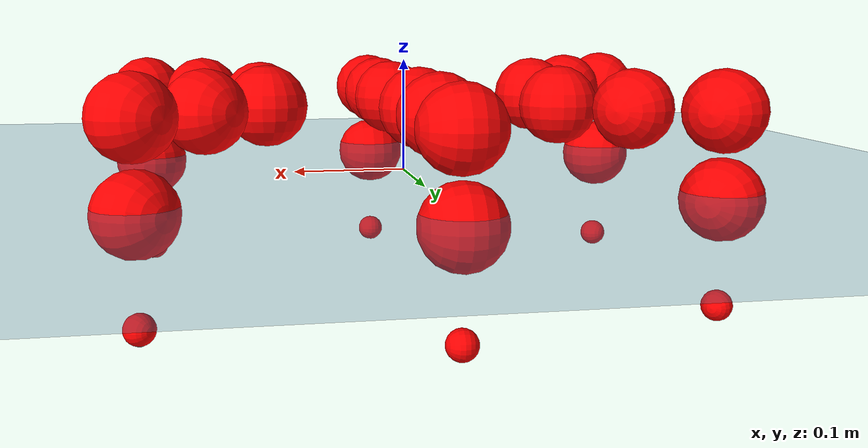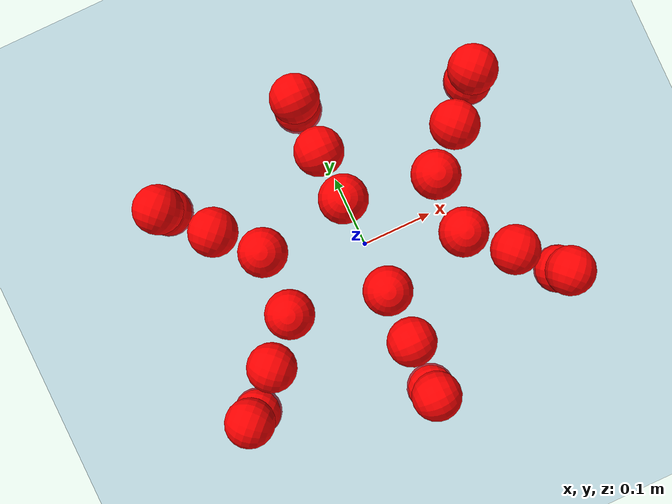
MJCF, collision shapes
<mujoco model="Golem">
  <compiler angle="radian" assetdir="assets" balanceinertia="true" inertiafromgeom="false"/>

  <option timestep="0.005" density="1.2" viscosity="2e-05"/>

  <size nkey="1"/>

  <visual>
    <quality shadowsize="8192"/>
    <map shadowclip="0.5"/>
  </visual>

  <default>
    <default class="/">
      <joint armature="0.01" damping="0.01" frictionloss="0.01"/>
      <geom contype="0" conaffinity="0" group="1" solref="-1000 -80"/>
      <site size="0.01 0.005 0.005" group="5"/>
      <general forcelimited="true" biastype="affine" gainprm="25" biasprm="0 -25 -0.5"/>
      <default class="visual">
        <geom type="mesh" group="2"/>
      </default>
      <default class="collision">
        <geom group="3"/>
      </default>
      <default class="foot">
        <geom size="0.01 0 0" condim="6" group="4" priority="1" solimp="0.015 1 0.01"/>
      </default>
      <default class="reward_collision_sphere">
        <geom group="5" rgba="1 0 0 1"/>
      </default>
    </default>
  </default>

  <asset>
    <texture type="skybox" colorspace="auto" name="//unnamed_texture_0" builtin="gradient" rgb1="0.95 0.95 0.95" rgb2="0.95 0.95 0.95" width="100" height="600"/>
    <texture type="2d" colorspace="auto" name="texplane" builtin="checker" rgb1="0.345 0.575 0.748" rgb2="0.345 0.575 0.748" markrgb="1 1 1" width="512" height="512"/>
    <material name="MatPlane" class="/" texture="texplane" texuniform="true" texrepeat="2 2" specular="0.9"/>
    <mesh name="body" class="/" file="body.stl" scale="0.001 0.001 0.001"/>
    <mesh name="coxa" class="/" file="coxa.stl" scale="0.001 0.001 0.001"/>
    <mesh name="femur" class="/" file="femur.stl" scale="0.001 0.001 0.001"/>
    <mesh name="tibia" class="/" file="tibia.stl" scale="0.001 0.001 0.001"/>
    <mesh name="tarsus" class="/" file="tarsus.stl" scale="0.001 0.001 0.001"/>
  </asset>

  <worldbody>
    <geom name="floor" class="/" size="100 100 0.125" type="plane" group="0" material="MatPlane"/>
    <light name="toplight_shadow" class="/" pos="0 0 5" dir="0.0990148 0.0990148 -0.990148" type="directional" ambient="0.04 0.04 0.04" diffuse="0.55 0.55 0.55" specular="0.12 0.12 0.12"/>
    <light name="toplight_fill" class="/" pos="0 0 5" dir="0.0990148 0.0990148 -0.990148" type="directional" castshadow="false" ambient="0.04 0.04 0.04" diffuse="0.3 0.3 0.3" specular="0.08 0.08 0.08"/>
    <body name="trunk" pos="-0.000741995 -0.000216135 -0.00246539" quat="1 0.000665867 -0.000210125 0.00070019">
      <inertial pos="0.000228971 0.00243456 -0.00479042" quat="0.999968 0.00268038 -0.00470771 0.00585355" mass="2.42747" diaginertia="0.0039833 0.00209568 0.012076"/>
      <joint name="//unnamed_joint_0" type="free"/>
      <geom name="//unnamed_geom_1" class="/" pos="0 0 0.0659902" quat="1 0 0 0" type="mesh" rgba="0.9 0.9 0.9 1" mesh="body"/>
      <site name="imu" class="/" pos="0.0982809 0.00071993 0.116858" size="0.00862884"/>
      <camera name="track" class="/" pos="0 -1.46244 0" quat="0.707107 0.707107 0 0" mode="trackcom"/>
      <camera name="ego_camera" class="/" pos="0.107424 0 0.10311" quat="-0.5 -0.5 0.5 0.5"/>
      <body name="coxa_RR" pos="-0.149205 -0.060427 0.0669377" quat="0.382296 -0.000102124 -0.000774043 -0.924039">
        <inertial pos="-0.00224367 -0.00248531 -0.000799837" quat="0.999907 0.0110396 -0.00558422 0.00572301" mass="0.131095" diaginertia="0.00382652 0.00206329 0.0113612"/>
        <joint name="coxa_joint_RR" class="/" pos="0 0 0" axis="0.00610546 -0.00698367 -0.999957" range="-3.17853 3.12442" armature="0.00839635" damping="0.0174747" frictionloss="0.00980189"/>
        <geom name="//unnamed_geom_2" class="/" type="mesh" rgba="0.2 0.2 0.2 1" mesh="coxa"/>
        <geom name="//unnamed_geom_3" class="reward_collision_sphere" size="0.0345154" pos="-0.0247901 0 0"/>
        <body name="femur_RR" pos="0.0505856 0.00181423 0.000770217" quat="0.500095 -0.499756 0.499983 0.500166">
          <inertial pos="0.00102553 -0.00159294 0.00247189" quat="1 0.000148112 -8.15132e-05 -2.27638e-06" mass="0.127805" diaginertia="0.00384353 0.00207129 0.0112449"/>
          <joint name="femur_joint_RR" class="/" pos="0 0 0" axis="0.0131194 -0.00131458 -0.999913" range="-3.13066 3.12813" armature="0.00780296" damping="0" frictionloss="0.00834165"/>
          <geom name="//unnamed_geom_4" class="/" type="mesh" rgba="0.9 0.9 0.9 1" mesh="femur"/>
          <geom name="//unnamed_geom_5" class="reward_collision_sphere" size="0.0345154"/>
          <body name="tibia_RR" pos="0.000267493 -0.0802286 -0.00231267" quat="-2.98404e-05 1 4.19729e-05 -4.40803e-06">
            <inertial pos="-0.00196771 0.00269203 -0.00248371" quat="0.999909 -0.00310288 -0.0129379 0.00201492" mass="0.126562" diaginertia="0.00362063 0.0020363 0.0112546"/>
            <joint name="tibia_joint_RR" class="/" pos="0 0 0" axis="-0.00271888 -0.00461802 0.999986" range="-3.14141 3.08329" armature="0.00861968" damping="0.0150092" frictionloss="0.00817791"/>
            <geom name="//unnamed_geom_6" class="/" type="mesh" rgba="0.2 0.2 0.2 1" mesh="tibia"/>
            <geom name="//unnamed_geom_7" class="reward_collision_sphere" size="0.0345154"/>
            <body name="tarsus_RR" pos="0.0748236 -0.00230293 -0.00136122" quat="0.999999 0.000368819 -0.000721715 -0.00103233">
              <inertial pos="0.0507101 -0.00194059 0.00146314" quat="0.501576 0.500402 0.499852 0.498164" mass="0.128383" diaginertia="0.00386226 0.00223094 0.0120113"/>
              <joint name="tarsus_joint_RR" class="/" pos="0 0 0" axis="0.000634281 0.00027848 1" range="-3.14566 3.16058" armature="0.00866432" damping="0" frictionloss="0.00900286"/>
              <geom name="//unnamed_geom_8" class="/" type="mesh" rgba="0.9 0.9 0.9 1" mesh="tarsus"/>
              <geom name="foot_1" class="foot" size="0.0088688" pos="0.0925497 0 0" quat="0 -0.707107 0 0.707107"/>
              <geom name="//unnamed_geom_10" class="reward_collision_sphere" size="0.0345154"/>
              <geom name="//unnamed_geom_11" class="reward_collision_sphere" size="0.0129433" pos="0.0888312 0 0"/>
              <site name="foot_1" class="foot" pos="0.0925497 0 0" quat="0 -0.707107 0 0.707107" size="0.00862884"/>
            </body>
          </body>
        </body>
      </body>
      <body name="coxa_RM" pos="0.00167148 -0.0952945 0.063978" quat="0.706866 8.97056e-05 -0.000899088 -0.707347">
        <inertial pos="0.000255529 -0.00251931 -0.00163598" quat="0.999997 0.00101699 0.00199191 0.000850002" mass="0.12313" diaginertia="0.00358649 0.00194948 0.0114365"/>
        <joint name="coxa_joint_RM" class="/" pos="0 0 0" axis="-0.000181371 -0.000558693 -1" stiffness="0.00656324" range="-3.14533 3.15743" armature="0.00787502" damping="0.0170876" frictionloss="0.00975663"/>
        <geom name="//unnamed_geom_12" class="/" type="mesh" rgba="0.2 0.2 0.2 1" mesh="coxa"/>
        <geom name="//unnamed_geom_13" class="reward_collision_sphere" size="0.0345154" pos="-0.0247901 0 0"/>
        <body name="femur_RM" pos="0.051522 5.50391e-05 0.000111846" quat="0.500363 -0.499702 0.499528 0.500407">
          <inertial pos="0.000324588 -0.00268306 -0.000238345" quat="0.999932 0.00728759 0.00819419 0.00406498" mass="0.129596" diaginertia="0.00399339 0.00204862 0.0117662"/>
          <joint name="femur_joint_RM" class="/" pos="0 0 0" axis="0.00331772 0.00410963 -0.999986" range="-3.19554 3.19468" armature="0.00959197" damping="0.0261948" frictionloss="0.00881808"/>
          <geom name="//unnamed_geom_14" class="/" type="mesh" rgba="0.9 0.9 0.9 1" mesh="femur"/>
          <geom name="//unnamed_geom_15" class="reward_collision_sphere" size="0.0345154"/>
          <body name="tibia_RM" pos="0.000479967 -0.080337 -0.000551769" quat="-0.000205769 1 -6.81858e-05 -7.14026e-05">
            <inertial pos="-0.00086662 -0.00056341 -0.00251484" quat="0.999902 0.000321989 -0.000706611 -0.0139675" mass="0.120057" diaginertia="0.00377813 0.00201474 0.0116151"/>
            <joint name="tibia_joint_RM" class="/" pos="0 0 0" axis="-0.00268883 -0.000871164 0.999996" stiffness="0.00893729" range="-3.19605 3.08416" armature="0.00734932" damping="0" frictionloss="0.00821866"/>
            <geom name="//unnamed_geom_16" class="/" type="mesh" rgba="0.2 0.2 0.2 1" mesh="tibia"/>
            <geom name="//unnamed_geom_17" class="reward_collision_sphere" size="0.0345154"/>
            <body name="tarsus_RM" pos="0.0720287 -0.00196069 0.00255768" quat="1 0.000652958 -0.000475163 -0.000321153">
              <inertial pos="0.0479064 0.000360637 -0.0014137" quat="0.491577 0.497452 0.499821 0.510952" mass="0.128506" diaginertia="0.00386917 0.00208455 0.0116874"/>
              <joint name="tarsus_joint_RM" class="/" pos="0 0 0" axis="0.000686769 -0.00415507 0.999991" range="-3.15843 3.17158" armature="0.0087199" damping="0.00100206" frictionloss="0.00890535"/>
              <geom name="//unnamed_geom_18" class="/" type="mesh" rgba="0.9 0.9 0.9 1" mesh="tarsus"/>
              <geom name="foot_2" class="foot" size="0.00778536" pos="0.0925497 0 0" quat="0 -0.707107 0 0.707107"/>
              <geom name="//unnamed_geom_20" class="reward_collision_sphere" size="0.0345154"/>
              <geom name="//unnamed_geom_21" class="reward_collision_sphere" size="0.0129433" pos="0.0888312 0 0"/>
              <site name="foot_2" class="foot" pos="0.0925497 0 0" quat="0 -0.707107 0 0.707107" size="0.00862884"/>
            </body>
          </body>
        </body>
      </body>
      <body name="coxa_RF" pos="0.145575 -0.0596059 0.0653113" quat="0.92398 -0.000651467 -0.00104186 -0.38244">
        <inertial pos="0.00250976 -0.00263294 0.000900771" quat="0.999999 -0.000900692 -0.000676678 -0.000645894" mass="0.130544" diaginertia="0.00400038 0.00212547 0.011597"/>
        <joint name="coxa_joint_RF" class="/" pos="0 0 0" axis="-0.00991548 0.00329011 -0.999945" range="-3.14096 3.15644" armature="0.00845649" damping="0" frictionloss="0.00802212"/>
        <geom name="//unnamed_geom_22" class="/" type="mesh" rgba="0.2 0.2 0.2 1" mesh="coxa"/>
        <geom name="//unnamed_geom_23" class="reward_collision_sphere" size="0.0345154" pos="-0.0247901 0 0"/>
        <body name="femur_RF" pos="0.0485038 0.0012839 0.00174203" quat="0.49992 -0.500345 0.50039 0.499344">
          <inertial pos="-0.000734196 0.00114599 -0.00169212" quat="0.999926 0.00970818 0.00539978 -0.00498081" mass="0.125414" diaginertia="0.0037545 0.00201452 0.0114979"/>
          <joint name="femur_joint_RF" class="/" pos="0 0 0" axis="0.00221006 0.000780367 -0.999997" range="-3.09759 3.18497" armature="0.00922343" damping="0.00716648" frictionloss="0.00872202"/>
          <geom name="//unnamed_geom_24" class="/" type="mesh" rgba="0.9 0.9 0.9 1" mesh="femur"/>
          <geom name="//unnamed_geom_25" class="reward_collision_sphere" size="0.0345154"/>
          <body name="tibia_RF" pos="0.0015476 -0.0796303 -0.00141868" quat="0.000137248 1 0.000108312 -0.00030498">
            <inertial pos="0.00178615 -0.00271305 0.00047064" quat="0.999968 -8.66807e-05 -0.00747797 0.00276302" mass="0.12829" diaginertia="0.00375043 0.00205141 0.0117432"/>
            <joint name="tibia_joint_RF" class="/" pos="0 0 0" axis="0.000801701 -0.00016556 1" stiffness="0.00927206" range="-3.15679 3.08233" armature="0.00880708" damping="0.00435073" frictionloss="0.00863693"/>
            <geom name="//unnamed_geom_26" class="/" type="mesh" rgba="0.2 0.2 0.2 1" mesh="tibia"/>
            <geom name="//unnamed_geom_27" class="reward_collision_sphere" size="0.0345154"/>
            <body name="tarsus_RF" pos="0.0692533 -0.002821 -0.000158505" quat="0.999999 0.00037291 0.00087981 -0.000976831">
              <inertial pos="0.0496351 -0.000641433 -0.000194178" quat="0.499074 0.500396 0.500375 0.500154" mass="0.128321" diaginertia="0.00389223 0.00213833 0.0114992"/>
              <joint name="tarsus_joint_RF" class="/" pos="0 0 0" axis="-0.000649069 -0.000223427 1" range="-3.14289 3.14687" armature="0.00838632" damping="0" frictionloss="0.00905986"/>
              <geom name="//unnamed_geom_28" class="/" type="mesh" rgba="0.9 0.9 0.9 1" mesh="tarsus"/>
              <geom name="foot_3" class="foot" size="0.00862986" pos="0.0925497 0 0" quat="0 -0.707107 0 0.707107"/>
              <geom name="//unnamed_geom_30" class="reward_collision_sphere" size="0.0345154"/>
              <geom name="//unnamed_geom_31" class="reward_collision_sphere" size="0.0129433" pos="0.0888312 0 0"/>
              <site name="foot_3" class="foot" pos="0.0925497 0 0" quat="0 -0.707107 0 0.707107" size="0.00862884"/>
            </body>
          </body>
        </body>
      </body>
      <body name="coxa_LR" pos="-0.14684 0.0657169 0.0640667" quat="0.382729 3.56777e-05 1.77201e-05 0.923861">
        <inertial pos="-3.54783e-05 -0.00148797 -0.00244658" quat="0.999903 0.00101467 -0.0080709 -0.0112708" mass="0.12285" diaginertia="0.00374618 0.00210747 0.0114963"/>
        <joint name="coxa_joint_LR" class="/" pos="0 0 0" axis="-0.0106513 -0.00196825 -0.999941" stiffness="0.0129739" range="-3.14955 3.15779" armature="0.00919369" damping="0.0135817" frictionloss="0.00984626"/>
        <geom name="//unnamed_geom_32" class="/" type="mesh" rgba="0.2 0.2 0.2 1" mesh="coxa"/>
        <geom name="//unnamed_geom_33" class="reward_collision_sphere" size="0.0345154" pos="-0.0247901 0 0"/>
        <body name="femur_LR" pos="0.0475596 -0.00300331 0.0001474" quat="0.49984 -0.499113 0.500155 0.500891">
          <inertial pos="0.000748633 -0.00185376 -0.0022733" quat="0.99994 0.00842479 -0.00141275 -0.00686402" mass="0.127853" diaginertia="0.00373353 0.00202749 0.0112357"/>
          <joint name="femur_joint_LR" class="/" pos="0 0 0" axis="-0.00980316 -0.000988557 0.999951" range="-3.13274 3.13938" armature="0.00974682" damping="0.0158041" frictionloss="0.00907337"/>
          <geom name="//unnamed_geom_34" class="/" type="mesh" rgba="0.9 0.9 0.9 1" mesh="femur"/>
          <geom name="//unnamed_geom_35" class="reward_collision_sphere" size="0.0345154"/>
          <body name="tibia_LR" pos="-0.00264951 -0.0796794 -0.00343226" quat="0.000221003 1 0.000310606 0.00015318">
            <inertial pos="0.000908013 0.00275776 0.00107183" quat="0.999999 -0.00049199 0.000986434 0.000762191" mass="0.132248" diaginertia="0.00384546 0.00214112 0.0124238"/>
            <joint name="tibia_joint_LR" class="/" pos="0 0 0" axis="0.00455556 0.00661524 -0.999968" stiffness="0.0018816" range="-3.08488 3.10608" armature="0.00936262" damping="0.00137957" frictionloss="0.0098076"/>
            <geom name="//unnamed_geom_36" class="/" type="mesh" rgba="0.2 0.2 0.2 1" mesh="tibia"/>
            <geom name="//unnamed_geom_37" class="reward_collision_sphere" size="0.0345154"/>
            <body name="tarsus_LR" pos="0.0719872 0.000181271 -0.00088292" quat="1 -6.37152e-08 4.729e-08 8.79648e-08">
              <inertial pos="0.0518404 0.00130007 -0.0013985" quat="0.499765 0.500124 0.499704 0.500407" mass="0.127154" diaginertia="0.00398851 0.00210803 0.0115317"/>
              <joint name="tarsus_joint_LR" class="/" pos="0 0 0" axis="-0.00485785 0.00122392 -0.999987" range="-3.08932 3.09152" armature="0.00735608" damping="0.018287" frictionloss="0.00872456"/>
              <geom name="//unnamed_geom_38" class="/" type="mesh" rgba="0.9 0.9 0.9 1" mesh="tarsus"/>
              <geom name="foot_4" class="foot" size="0.00857224" pos="0.0925497 0 0" quat="0.707107 0 -0.707107 0"/>
              <geom name="//unnamed_geom_40" class="reward_collision_sphere" size="0.0345154"/>
              <geom name="//unnamed_geom_41" class="reward_collision_sphere" size="0.0129433" pos="0.0888312 0 0"/>
              <site name="foot_4" class="foot" pos="0.0925497 0 0" quat="0.707107 0 -0.707107 0" size="0.00862884"/>
            </body>
          </body>
        </body>
      </body>
      <body name="coxa_LM" pos="-0.000116202 0.0922467 0.0651903" quat="0.707108 7.70261e-05 -4.03818e-05 0.707105">
        <inertial pos="0.000311992 -0.00255973 0.0018145" quat="0.999949 0.00788092 0.00470173 -0.00411271" mass="0.133121" diaginertia="0.00381731 0.0020969 0.0116364"/>
        <joint name="coxa_joint_LM" class="/" pos="0 0 0" axis="-0.00735889 -0.0112395 -0.99991" range="-3.12581 3.11932" armature="0.00768842" damping="0.0187791" frictionloss="0.00866166"/>
        <geom name="//unnamed_geom_42" class="/" type="mesh" rgba="0.2 0.2 0.2 1" mesh="coxa"/>
        <geom name="//unnamed_geom_43" class="reward_collision_sphere" size="0.0345154" pos="-0.0247901 0 0"/>
        <body name="femur_LM" pos="0.0471087 0.00258046 0.000110305" quat="0.500067 -0.500106 0.499781 0.500045">
          <inertial pos="-0.00209477 0.00235803 -0.00270837" quat="0.999994 -0.00267588 -0.00205292 0.000918222" mass="0.127154" diaginertia="0.00370588 0.0020869 0.0112911"/>
          <joint name="femur_joint_LM" class="/" pos="0 0 0" axis="0.00267025 0.0142445 0.999895" stiffness="0.0110203" range="-3.14505 3.1457" armature="0.00893587" damping="0" frictionloss="0.00984357"/>
          <geom name="//unnamed_geom_44" class="/" type="mesh" rgba="0.9 0.9 0.9 1" mesh="femur"/>
          <geom name="//unnamed_geom_45" class="reward_collision_sphere" size="0.0345154"/>
          <body name="tibia_LM" pos="0.00234839 -0.0786354 -0.000386781" quat="-0.000180512 1 -8.90603e-05 5.72039e-05">
            <inertial pos="-0.000446737 2.68275e-05 0.00285417" quat="0.999901 0.00375121 -0.0100057 0.00916941" mass="0.126617" diaginertia="0.00389078 0.00213195 0.0114015"/>
            <joint name="tibia_joint_LM" class="/" pos="0 0 0" axis="0.000657683 0.000431696 -1" stiffness="0.0111696" range="-3.16174 3.19199" armature="0.00828937" damping="0" frictionloss="0.00938247"/>
            <geom name="//unnamed_geom_46" class="/" type="mesh" rgba="0.2 0.2 0.2 1" mesh="tibia"/>
            <geom name="//unnamed_geom_47" class="reward_collision_sphere" size="0.0345154"/>
            <body name="tarsus_LM" pos="0.072189 -0.0036929 -0.00224367" quat="1 -3.56488e-05 -5.58285e-07 -3.23263e-05">
              <inertial pos="0.0520013 -0.000187468 -0.00068174" quat="0.499747 0.500382 0.499714 0.500156" mass="0.128307" diaginertia="0.00387244 0.0020976 0.0121771"/>
              <joint name="tarsus_joint_LM" class="/" pos="0 0 0" axis="6.44048e-05 -0.000248627 -1" range="-3.12499 3.14256" armature="0.0087972" damping="0.000924489" frictionloss="0.00854432"/>
              <geom name="//unnamed_geom_48" class="/" type="mesh" rgba="0.9 0.9 0.9 1" mesh="tarsus"/>
              <geom name="foot_5" class="foot" size="0.00864835" pos="0.0925497 0 0" quat="0.707107 0 -0.707107 0"/>
              <geom name="//unnamed_geom_50" class="reward_collision_sphere" size="0.0345154"/>
              <geom name="//unnamed_geom_51" class="reward_collision_sphere" size="0.0129433" pos="0.0888312 0 0"/>
              <site name="foot_5" class="foot" pos="0.0925497 0 0" quat="0.707107 0 -0.707107 0" size="0.00862884"/>
            </body>
          </body>
        </body>
      </body>
      <body name="coxa_LF" pos="0.144264 0.0615423 0.0665094" quat="0.923902 -0.000133626 -0.000225104 0.38263">
        <inertial pos="0.00296303 0.00109375 0.00111598" quat="0.999926 0.0108163 -0.00513431 -0.00213717" mass="0.127753" diaginertia="0.00393062 0.00208567 0.0116545"/>
        <joint name="coxa_joint_LF" class="/" pos="0 0 0" axis="-3.13335e-05 -2.35089e-06 -1" range="-3.15981 3.08538" armature="0.00777634" damping="0.00946528" frictionloss="0.00902111"/>
        <geom name="//unnamed_geom_52" class="/" type="mesh" rgba="0.2 0.2 0.2 1" mesh="coxa"/>
        <geom name="//unnamed_geom_53" class="reward_collision_sphere" size="0.0345154" pos="-0.0247901 0 0"/>
        <body name="femur_LF" pos="0.0472515 -0.00095709 0.000277228" quat="0.499893 -0.500011 0.499941 0.500155">
          <inertial pos="-0.00278511 0.00269676 -0.000294808" quat="0.999972 -0.0056949 0.00312809 -0.00360444" mass="0.1277" diaginertia="0.00372524 0.00207129 0.0117213"/>
          <joint name="femur_joint_LF" class="/" pos="0 0 0" axis="0.0132283 -0.00290363 0.999908" range="-3.19196 3.12469" armature="0.00858085" damping="0" frictionloss="0.00863773"/>
          <geom name="//unnamed_geom_54" class="/" type="mesh" rgba="0.9 0.9 0.9 1" mesh="femur"/>
          <geom name="//unnamed_geom_55" class="reward_collision_sphere" size="0.0345154"/>
          <body name="tibia_LF" pos="-0.00173816 -0.0775544 0.00256122" quat="-0.000440527 0.999999 -0.000180734 -0.00126993">
            <inertial pos="-0.0027711 -0.000154815 0.000860508" quat="0.999965 -0.00741668 0.000467861 -0.00382852" mass="0.132389" diaginertia="0.00373034 0.00206696 0.0115524"/>
            <joint name="tibia_joint_LF" class="/" pos="0 0 0" axis="-0.00352308 0.000147415 -0.999994" stiffness="0.006466" range="-3.13831 3.17371" armature="0.00847769" damping="0.00804928" frictionloss="0.00898312"/>
            <geom name="//unnamed_geom_56" class="/" type="mesh" rgba="0.2 0.2 0.2 1" mesh="tibia"/>
            <geom name="//unnamed_geom_57" class="reward_collision_sphere" size="0.0345154"/>
            <body name="tarsus_LF" pos="0.0731983 -0.00222669 0.00153743" quat="1 0.000441043 0.000147798 -0.000169009">
              <inertial pos="0.0474992 -0.00108294 -0.00286938" quat="0.500078 0.500223 0.499478 0.500221" mass="0.120695" diaginertia="0.00372846 0.00203101 0.0114317"/>
              <joint name="tarsus_joint_LF" class="/" pos="0 0 0" axis="0.00863964 0.00475835 -0.999951" range="-3.14178 3.18261" armature="0.0077919" damping="0.0210738" frictionloss="0.00857649"/>
              <geom name="//unnamed_geom_58" class="/" type="mesh" rgba="0.9 0.9 0.9 1" mesh="tarsus"/>
              <geom name="foot_6" class="foot" size="0.00951765" pos="0.0925497 0 0" quat="0.707107 0 -0.707107 0"/>
              <geom name="//unnamed_geom_60" class="reward_collision_sphere" size="0.0345154"/>
              <geom name="//unnamed_geom_61" class="reward_collision_sphere" size="0.0129433" pos="0.0888312 0 0"/>
              <site name="foot_6" class="foot" pos="0.0925497 0 0" quat="0.707107 0 -0.707107 0" size="0.00862884"/>
            </body>
          </body>
        </body>
      </body>
    </body>
  </worldbody>

  <contact>
    <pair class="/" geom1="floor" geom2="foot_1" name="//unnamed_contact_0"/>
    <pair class="/" geom1="floor" geom2="foot_2" name="//unnamed_contact_1"/>
    <pair class="/" geom1="floor" geom2="foot_3" name="//unnamed_contact_2"/>
    <pair class="/" geom1="floor" geom2="foot_4" name="//unnamed_contact_3"/>
    <pair class="/" geom1="floor" geom2="foot_5" name="//unnamed_contact_4"/>
    <pair class="/" geom1="floor" geom2="foot_6" name="//unnamed_contact_5"/>
  </contact>

  <actuator>
    <general name="coxa_joint_RR" class="/" joint="coxa_joint_RR" forcerange="-6.49698 6.49698" gainprm="20.7242" biasprm="0 -20.7242 -0.464482"/>
    <general name="femur_joint_RR" class="/" joint="femur_joint_RR" forcerange="-6.91868 6.91868" gainprm="20.7242" biasprm="0 -20.7242 -0.464482"/>
    <general name="tibia_joint_RR" class="/" joint="tibia_joint_RR" forcerange="-5.65981 5.65981" gainprm="20.7242" biasprm="0 -20.7242 -0.464482"/>
    <general name="tarsus_joint_RR" class="/" joint="tarsus_joint_RR" forcerange="-6.62747 6.62747" gainprm="20.7242" biasprm="0 -20.7242 -0.464482"/>
    <general name="coxa_joint_RM" class="/" joint="coxa_joint_RM" forcerange="-6.68118 6.68118" gainprm="20.7242" biasprm="0 -20.7242 -0.464482"/>
    <general name="femur_joint_RM" class="/" joint="femur_joint_RM" forcerange="-6.45027 6.45027" gainprm="20.7242" biasprm="0 -20.7242 -0.464482"/>
    <general name="tibia_joint_RM" class="/" joint="tibia_joint_RM" forcerange="-6.65994 6.65994" gainprm="20.7242" biasprm="0 -20.7242 -0.464482"/>
    <general name="tarsus_joint_RM" class="/" joint="tarsus_joint_RM" forcerange="-5.66166 5.66166" gainprm="20.7242" biasprm="0 -20.7242 -0.464482"/>
    <general name="coxa_joint_RF" class="/" joint="coxa_joint_RF" forcerange="-6.9584 6.9584" gainprm="20.7242" biasprm="0 -20.7242 -0.464482"/>
    <general name="femur_joint_RF" class="/" joint="femur_joint_RF" forcerange="-6.33763 6.33763" gainprm="20.7242" biasprm="0 -20.7242 -0.464482"/>
    <general name="tibia_joint_RF" class="/" joint="tibia_joint_RF" forcerange="-6.244 6.244" gainprm="20.7242" biasprm="0 -20.7242 -0.464482"/>
    <general name="tarsus_joint_RF" class="/" joint="tarsus_joint_RF" forcerange="-6.31974 6.31974" gainprm="20.7242" biasprm="0 -20.7242 -0.464482"/>
    <general name="coxa_joint_LR" class="/" joint="coxa_joint_LR" forcerange="-6.88437 6.88437" gainprm="20.7242" biasprm="0 -20.7242 -0.464482"/>
    <general name="femur_joint_LR" class="/" joint="femur_joint_LR" forcerange="-6.32915 6.32915" gainprm="20.7242" biasprm="0 -20.7242 -0.464482"/>
    <general name="tibia_joint_LR" class="/" joint="tibia_joint_LR" forcerange="-6.96408 6.96408" gainprm="20.7242" biasprm="0 -20.7242 -0.464482"/>
    <general name="tarsus_joint_LR" class="/" joint="tarsus_joint_LR" forcerange="-6.8369 6.8369" gainprm="20.7242" biasprm="0 -20.7242 -0.464482"/>
    <general name="coxa_joint_LM" class="/" joint="coxa_joint_LM" forcerange="-5.64996 5.64996" gainprm="20.7242" biasprm="0 -20.7242 -0.464482"/>
    <general name="femur_joint_LM" class="/" joint="femur_joint_LM" forcerange="-6.44917 6.44917" gainprm="20.7242" biasprm="0 -20.7242 -0.464482"/>
    <general name="tibia_joint_LM" class="/" joint="tibia_joint_LM" forcerange="-6.90832 6.90832" gainprm="20.7242" biasprm="0 -20.7242 -0.464482"/>
    <general name="tarsus_joint_LM" class="/" joint="tarsus_joint_LM" forcerange="-6.72005 6.72005" gainprm="20.7242" biasprm="0 -20.7242 -0.464482"/>
    <general name="coxa_joint_LF" class="/" joint="coxa_joint_LF" forcerange="-5.63878 5.63878" gainprm="20.7242" biasprm="0 -20.7242 -0.464482"/>
    <general name="femur_joint_LF" class="/" joint="femur_joint_LF" forcerange="-5.64611 5.64611" gainprm="20.7242" biasprm="0 -20.7242 -0.464482"/>
    <general name="tibia_joint_LF" class="/" joint="tibia_joint_LF" forcerange="-6.1171 6.1171" gainprm="20.7242" biasprm="0 -20.7242 -0.464482"/>
    <general name="tarsus_joint_LF" class="/" joint="tarsus_joint_LF" forcerange="-5.83711 5.83711" gainprm="20.7242" biasprm="0 -20.7242 -0.464482"/>
  </actuator>

  <sensor>
    <gyro site="imu" name="imu_angular_velocity"/>
    <velocimeter site="imu" name="imu_linear_velocity"/>
    <framelinvel objtype="site" objname="foot_1" name="foot_1_global_linear_velocity"/>
    <framelinvel objtype="site" objname="foot_2" name="foot_2_global_linear_velocity"/>
    <framelinvel objtype="site" objname="foot_3" name="foot_3_global_linear_velocity"/>
    <framelinvel objtype="site" objname="foot_4" name="foot_4_global_linear_velocity"/>
    <framelinvel objtype="site" objname="foot_5" name="foot_5_global_linear_velocity"/>
    <framelinvel objtype="site" objname="foot_6" name="foot_6_global_linear_velocity"/>
  </sensor>

  <keyframe>
    <key name="home" qpos="0 0 0.1457 1 0 0 0 0 0 0 0 0 0 0 0 0 0 0 0 0 0 0 0 0 0 0 0 0 0 0 0"/>
  </keyframe>
</mujoco>
